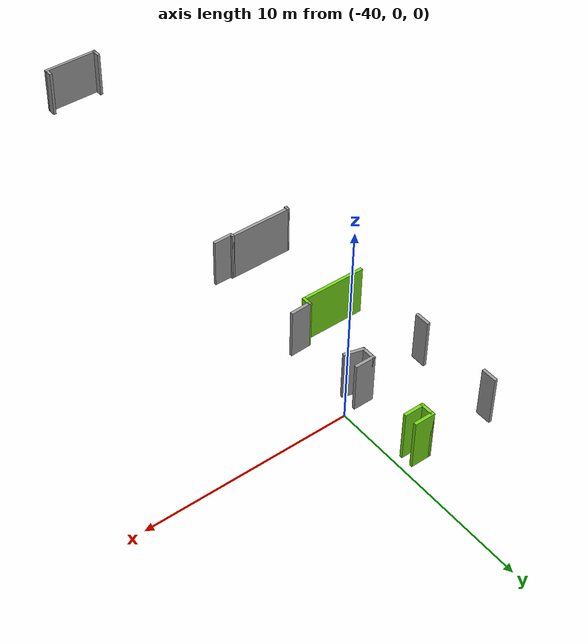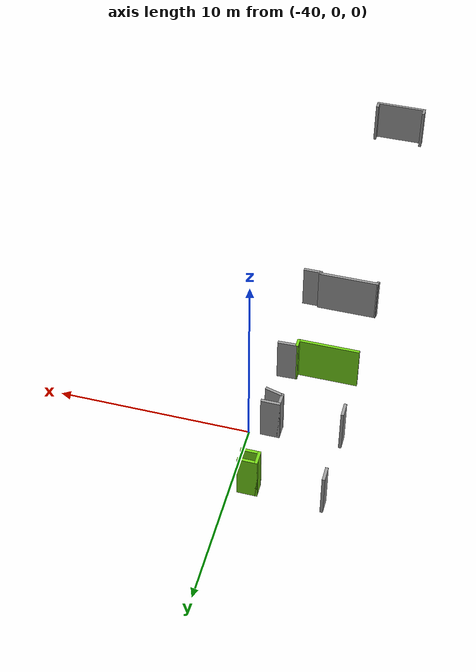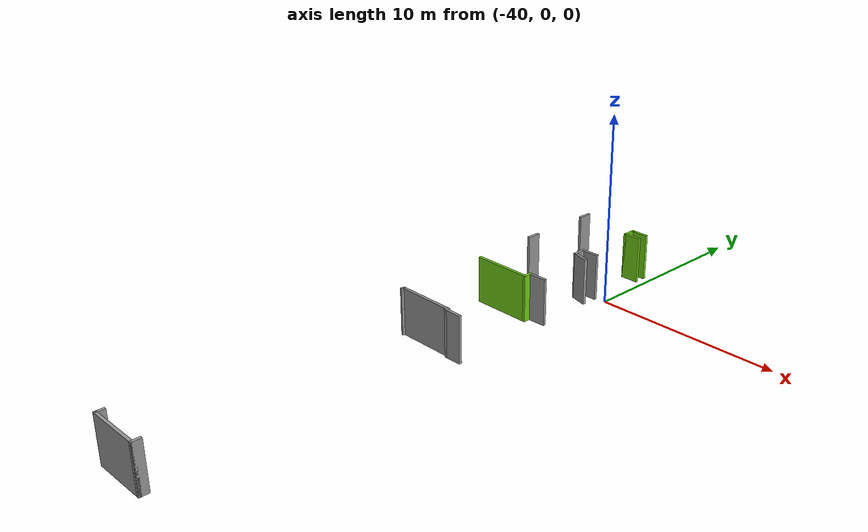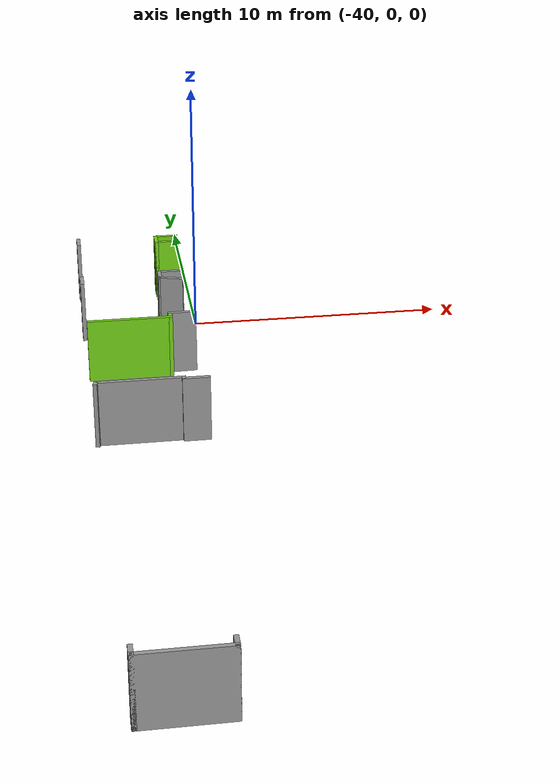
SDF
<sdf version="1.7">
 <model name="TD_n1">
  <pose>-6.74052 -9.30399 0 0 -0 0</pose>
  <link name="Wall_12">
   <collision name="Wall_12_Collision">
    <geometry><box><size>0.5 0.15 2.5</size></box></geometry>
    <pose>0 0 1.25 0 -0 0</pose>
   </collision>
   <visual name="Wall_12_Visual">
    <pose>0 0 1.25 0 -0 0</pose>
    <geometry><box><size>0.5 0.15 2.5</size></box></geometry>
    <material>
     <script><uri>file://media/materials/scripts/gazebo.material</uri><name>Gazebo/Grey</name></script>
     <ambient>1 1 1 1</ambient>
    </material>
    <meta><layer>0</layer></meta>
   </visual>
   <pose>-37.5553 -16.1082 0 0 -0 -1.5708</pose>
  </link>
  <link name="Wall_127">
   <collision name="Wall_127_Collision">
    <geometry><box><size>3.25 0.15 2.5</size></box></geometry>
    <pose>0 0 1.25 0 -0 0</pose>
   </collision>
   <visual name="Wall_127_Visual">
    <pose>0 0 1.25 0 -0 0</pose>
    <geometry><box><size>3.25 0.15 2.5</size></box></geometry>
    <material>
     <script><uri>file://media/materials/scripts/gazebo.material</uri><name>Gazebo/Grey</name></script>
     <ambient>0.45098 0.823529 0.0862745 1</ambient>
    </material>
    <meta><layer>0</layer></meta>
   </visual>
   <pose>-36.206 4.75793 0 0 -0 0</pose>
  </link>
  <link name="Wall_128">
   <collision name="Wall_128_Collision">
    <geometry><box><size>0.5 0.15 2.5</size></box></geometry>
    <pose>0 0 1.25 0 -0 0</pose>
   </collision>
   <visual name="Wall_128_Visual">
    <pose>0 0 1.25 0 -0 0</pose>
    <geometry><box><size>0.5 0.15 2.5</size></box></geometry>
    <material>
     <script><uri>file://media/materials/scripts/gazebo.material</uri><name>Gazebo/Grey</name></script>
     <ambient>0.45098 0.823529 0.0862745 1</ambient>
    </material>
    <meta><layer>0</layer></meta>
   </visual>
   <pose>-34.656 4.93293 0 0 -0 1.5708</pose>
  </link>
  <link name="Wall_129">
   <collision name="Wall_129_Collision">
    <geometry><box><size>1.07537 0.15 2.5</size></box></geometry>
    <pose>0 0 1.25 0 -0 0</pose>
   </collision>
   <visual name="Wall_129_Visual">
    <pose>0 0 1.25 0 -0 0</pose>
    <geometry><box><size>1.07537 0.15 2.5</size></box></geometry>
    <material>
     <script><uri>file://media/materials/scripts/gazebo.material</uri><name>Gazebo/Grey</name></script>
     <ambient>1 1 1 1</ambient>
    </material>
    <meta><layer>0</layer></meta>
   </visual>
   <pose>-34.1936 5.12518 0 0 -0 0.037287</pose>
  </link>
  <link name="Wall_13">
   <collision name="Wall_13_Collision">
    <geometry><box><size>3 0.15 2.5</size></box></geometry>
    <pose>0 0 1.25 0 -0 0</pose>
   </collision>
   <visual name="Wall_13_Visual">
    <pose>0 0 1.25 0 -0 0</pose>
    <geometry><box><size>3 0.15 2.5</size></box></geometry>
    <material>
     <script><uri>file://media/materials/scripts/gazebo.material</uri><name>Gazebo/Grey</name></script>
     <ambient>1 1 1 1</ambient>
    </material>
    <meta><layer>0</layer></meta>
   </visual>
   <pose>-36.1303 -16.2832 0 0 -0 0</pose>
  </link>
  <link name="Wall_14">
   <collision name="Wall_14_Collision">
    <geometry><box><size>0.5 0.15 2.5</size></box></geometry>
    <pose>0 0 1.25 0 -0 0</pose>
   </collision>
   <visual name="Wall_14_Visual">
    <pose>0 0 1.25 0 -0 0</pose>
    <geometry><box><size>0.5 0.15 2.5</size></box></geometry>
    <material>
     <script><uri>file://media/materials/scripts/gazebo.material</uri><name>Gazebo/Grey</name></script>
     <ambient>1 1 1 1</ambient>
    </material>
    <meta><layer>0</layer></meta>
   </visual>
   <pose>-34.7053 -16.1082 0 0 -0 1.5708</pose>
  </link>
  <link name="Wall_185">
   <collision name="Wall_185_Collision">
    <geometry><box><size>1 0.15 2.5</size></box></geometry>
    <pose>0 0 1.25 0 -0 0</pose>
   </collision>
   <visual name="Wall_185_Visual">
    <pose>0 0 1.25 0 -0 0</pose>
    <geometry><box><size>1 0.15 2.5</size></box></geometry>
    <material>
     <script><uri>file://media/materials/scripts/gazebo.material</uri><name>Gazebo/Grey</name></script>
     <ambient>1 1 1 1</ambient>
    </material>
    <meta><layer>0</layer></meta>
   </visual>
   <pose>-34.3141 9.18186 0 0 -0 3.14159</pose>
  </link>
  <link name="Wall_186">
   <collision name="Wall_186_Collision">
    <geometry><box><size>0.75 0.15 2.5</size></box></geometry>
    <pose>0 0 1.25 0 -0 0</pose>
   </collision>
   <visual name="Wall_186_Visual">
    <pose>0 0 1.25 0 -0 0</pose>
    <geometry><box><size>0.75 0.15 2.5</size></box></geometry>
    <material>
     <script><uri>file://media/materials/scripts/gazebo.material</uri><name>Gazebo/Grey</name></script>
     <ambient>1 1 1 1</ambient>
    </material>
    <meta><layer>0</layer></meta>
   </visual>
   <pose>-34.7391 8.88186 0 0 -0 -1.5708</pose>
  </link>
  <link name="Wall_187">
   <collision name="Wall_187_Collision">
    <geometry><box><size>1 0.15 2.5</size></box></geometry>
    <pose>0 0 1.25 0 -0 0</pose>
   </collision>
   <visual name="Wall_187_Visual">
    <pose>0 0 1.25 0 -0 0</pose>
    <geometry><box><size>1 0.15 2.5</size></box></geometry>
    <material>
     <script><uri>file://media/materials/scripts/gazebo.material</uri><name>Gazebo/Grey</name></script>
     <ambient>1 1 1 1</ambient>
    </material>
    <meta><layer>0</layer></meta>
   </visual>
   <pose>-34.3286 8.47186 0 0 -0 -0.261799</pose>
  </link>
  <link name="Wall_189">
   <collision name="Wall_189_Collision">
    <geometry><box><size>1 0.15 2.5</size></box></geometry>
    <pose>0 0 1.25 0 -0 0</pose>
   </collision>
   <visual name="Wall_189_Visual">
    <pose>0 0 1.25 0 -0 0</pose>
    <geometry><box><size>1 0.15 2.5</size></box></geometry>
    <material>
     <script><uri>file://media/materials/scripts/gazebo.material</uri><name>Gazebo/Grey</name></script>
     <ambient>0.45098 0.823529 0.0862745 1</ambient>
    </material>
    <meta><layer>0</layer></meta>
   </visual>
   <pose>-34.1562 12.9924 0 0 -0 3.14159</pose>
  </link>
  <link name="Wall_190">
   <collision name="Wall_190_Collision">
    <geometry><box><size>0.75 0.15 2.5</size></box></geometry>
    <pose>0 0 1.25 0 -0 0</pose>
   </collision>
   <visual name="Wall_190_Visual">
    <pose>0 0 1.25 0 -0 0</pose>
    <geometry><box><size>0.75 0.15 2.5</size></box></geometry>
    <material>
     <script><uri>file://media/materials/scripts/gazebo.material</uri><name>Gazebo/Grey</name></script>
     <ambient>0.45098 0.823529 0.0862745 1</ambient>
    </material>
    <meta><layer>0</layer></meta>
   </visual>
   <pose>-34.5812 12.6924 0 0 -0 -1.5708</pose>
  </link>
  <link name="Wall_191">
   <collision name="Wall_191_Collision">
    <geometry><box><size>1 0.15 2.5</size></box></geometry>
    <pose>0 0 1.25 0 -0 0</pose>
   </collision>
   <visual name="Wall_191_Visual">
    <pose>0 0 1.25 0 -0 0</pose>
    <geometry><box><size>1 0.15 2.5</size></box></geometry>
    <material>
     <script><uri>file://media/materials/scripts/gazebo.material</uri><name>Gazebo/Grey</name></script>
     <ambient>0.45098 0.823529 0.0862745 1</ambient>
    </material>
    <meta><layer>0</layer></meta>
   </visual>
   <pose>-34.1562 12.3924 0 0 -0 0</pose>
  </link>
  <link name="Wall_226">
   <collision name="Wall_226_Collision">
    <geometry><box><size>0.75 0.15 2.5</size></box></geometry>
    <pose>0 0 1.25 0 -0 0</pose>
   </collision>
   <visual name="Wall_226_Visual">
    <pose>0 0 1.25 0 -0 0</pose>
    <geometry><box><size>0.75 0.15 2.5</size></box></geometry>
    <material>
     <script><uri>file://media/materials/scripts/gazebo.material</uri><name>Gazebo/Grey</name></script>
     <ambient>1 1 1 1</ambient>
    </material>
    <meta><layer>0</layer></meta>
   </visual>
   <pose>-37.8606 8.72334 0 0 -0 1.5708</pose>
  </link>
  <link name="Wall_231">
   <collision name="Wall_231_Collision">
    <geometry><box><size>0.75 0.15 2.5</size></box></geometry>
    <pose>0 0 1.25 0 -0 0</pose>
   </collision>
   <visual name="Wall_231_Visual">
    <pose>0 0 1.25 0 -0 0</pose>
    <geometry><box><size>0.75 0.15 2.5</size></box></geometry>
    <material>
     <script><uri>file://media/materials/scripts/gazebo.material</uri><name>Gazebo/Grey</name></script>
     <ambient>1 1 1 1</ambient>
    </material>
    <meta><layer>0</layer></meta>
   </visual>
   <pose>-37.8455 12.8065 0 0 -0 1.5708</pose>
  </link>
  <link name="Wall_32">
   <collision name="Wall_32_Collision">
    <geometry><box><size>0.25 0.15 2.5</size></box></geometry>
    <pose>0 0 1.25 0 -0 0</pose>
   </collision>
   <visual name="Wall_32_Visual">
    <pose>0 0 1.25 0 -0 0</pose>
    <geometry><box><size>0.25 0.15 2.5</size></box></geometry>
    <material>
     <script><uri>file://media/materials/scripts/gazebo.material</uri><name>Gazebo/Grey</name></script>
     <ambient>1 1 1 1</ambient>
    </material>
    <meta><layer>0</layer></meta>
   </visual>
   <pose>-37.7438 -0.430145 0 0 -0 1.309</pose>
  </link>
  <link name="Wall_33">
   <collision name="Wall_33_Collision">
    <geometry><box><size>3.25 0.15 2.5</size></box></geometry>
    <pose>0 0 1.25 0 -0 0</pose>
   </collision>
   <visual name="Wall_33_Visual">
    <pose>0 0 1.25 0 -0 0</pose>
    <geometry><box><size>3.25 0.15 2.5</size></box></geometry>
    <material>
     <script><uri>file://media/materials/scripts/gazebo.material</uri><name>Gazebo/Grey</name></script>
     <ambient>1 1 1 1</ambient>
    </material>
    <meta><layer>0</layer></meta>
   </visual>
   <pose>-36.1808 -0.381848 0 0 -0 0</pose>
  </link>
  <link name="Wall_34">
   <collision name="Wall_34_Collision">
    <geometry><box><size>0.15 0.15 2.5</size></box></geometry>
    <pose>0 0 1.25 0 -0 0</pose>
   </collision>
   <visual name="Wall_34_Visual">
    <pose>0 0 1.25 0 -0 0</pose>
    <geometry><box><size>0.15 0.15 2.5</size></box></geometry>
    <material>
     <script><uri>file://media/materials/scripts/gazebo.material</uri><name>Gazebo/Grey</name></script>
     <ambient>1 1 1 1</ambient>
    </material>
    <meta><layer>0</layer></meta>
   </visual>
   <pose>-34.6308 -0.381848 0 0 -0 0</pose>
  </link>
  <link name="Wall_35">
   <collision name="Wall_35_Collision">
    <geometry><box><size>0.25 0.15 2.5</size></box></geometry>
    <pose>0 0 1.25 0 -0 0</pose>
   </collision>
   <visual name="Wall_35_Visual">
    <pose>0 0 1.25 0 -0 0</pose>
    <geometry><box><size>0.25 0.15 2.5</size></box></geometry>
    <material>
     <script><uri>file://media/materials/scripts/gazebo.material</uri><name>Gazebo/Grey</name></script>
     <ambient>1 1 1 1</ambient>
    </material>
    <meta><layer>0</layer></meta>
   </visual>
   <pose>-34.6308 -0.431849 0 0 -0 -1.5708</pose>
  </link>
  <link name="Wall_36">
   <collision name="Wall_36_Collision">
    <geometry><box><size>1 0.15 2.5</size></box></geometry>
    <pose>0 0 1.25 0 -0 0</pose>
   </collision>
   <visual name="Wall_36_Visual">
    <pose>0 0 1.25 0 -0 0</pose>
    <geometry><box><size>1 0.15 2.5</size></box></geometry>
    <material>
     <script><uri>file://media/materials/scripts/gazebo.material</uri><name>Gazebo/Grey</name></script>
     <ambient>1 1 1 1</ambient>
    </material>
    <meta><layer>0</layer></meta>
   </visual>
   <pose>-34.2058 -0.481849 0 0 -0 0</pose>
  </link>
  <static>1</static>
 </model>
</sdf>
